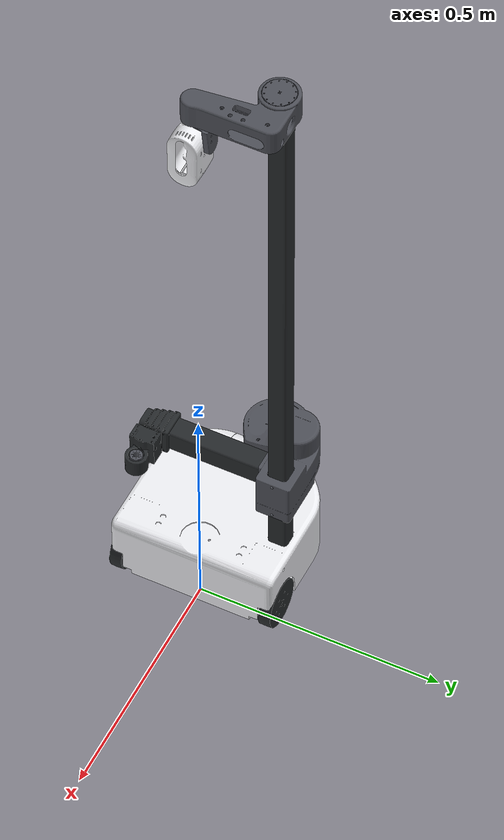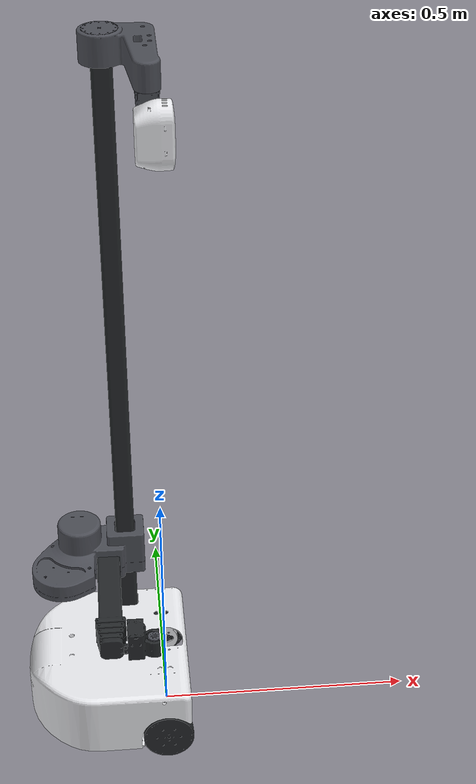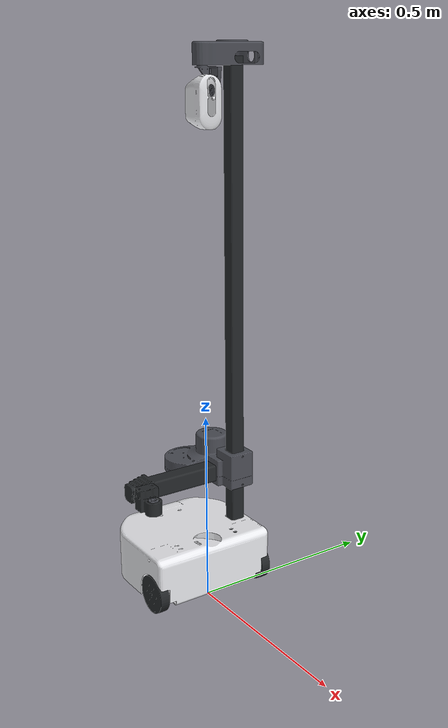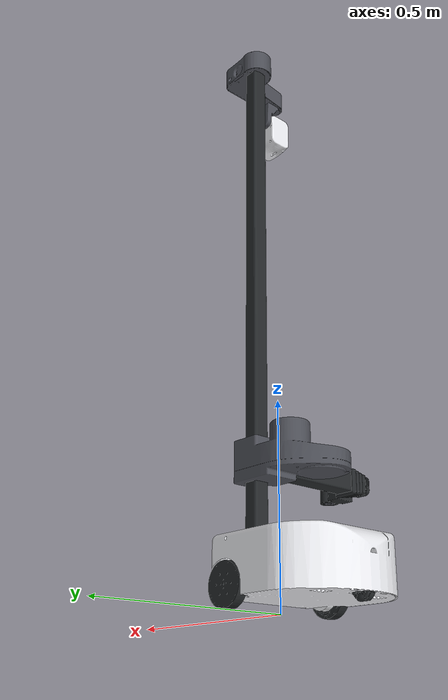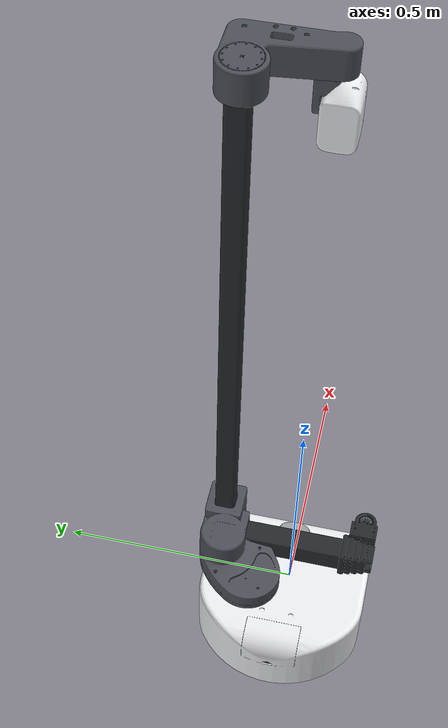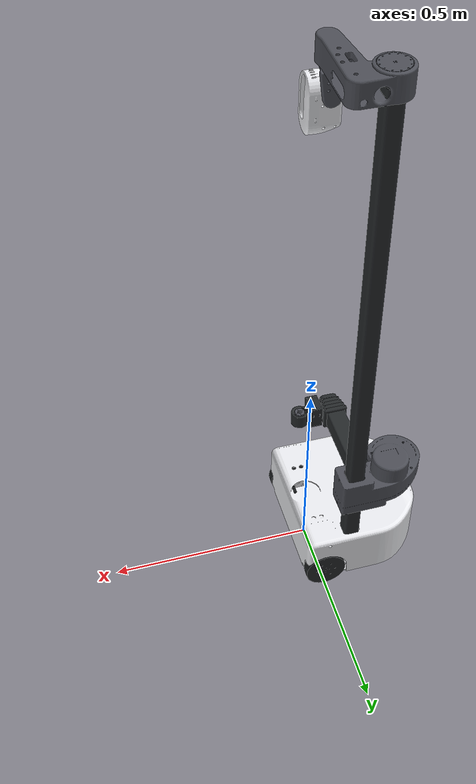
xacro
<?xml version="1.0"?>
<robot xmlns:xacro="http://www.ros.org/wiki/xacro" name="stretch_main">
  <xacro:property name="M_PI" value="3.1415926535897931" />

  <xacro:property name="joint_damping" value="21.75"/>
  <xacro:property name="joint_friction" value="10.48"/>
  <xacro:property name="joint_spring_stiffness" value="0"/>
  <xacro:property name="joint_spring_reference" value="0"/>
  <xacro:property name="caster_damping" value="0.005"/>
  <xacro:property name="caster_friction" value="0.001"/>
  <xacro:property name="caster_velocity_limit" value="5.0"/>
  <xacro:property name="caster_effort_limit" value="100"/>

  <link
    name="base_link">
    <inertial>
      <origin
        xyz="-0.109461304328163 -0.000741018909047708 0.0914915269429946"
        rpy="0 0 0" />
      <mass
        value="1.0723782659782" />
      <inertia
        ixx="0.00310580907710135"
        ixy="1.5182848191076E-06"
        ixz="0.00041690466732394"
        iyy="0.00433798719991832"
        iyz="1.33487716258445E-05"
        izz="0.0037204727467362" />
    </inertial>
    <visual>
      <origin
        xyz="0 0 0"
        rpy="0 0 0" />
      <geometry>
        <mesh
          filename="package://stretch_description/meshes/base_link.dae" />
      </geometry>
    </visual>
    <collision>
      <origin
        xyz="0 0 0"
        rpy="0 0 0" />
      <geometry>
        <mesh
          filename="package://stretch_description/meshes/base_link.STL" />
      </geometry>
    </collision>
  </link>

  <link
    name="link_right_wheel">
    <inertial>
      <origin
        xyz="1.25554620866719E-07 3.54748938447003E-07 0.0239581106165018"
        rpy="0 0 0" />
      <mass
        value="0.00356714564938475" />
      <inertia
        ixx="0.001"
        ixy="0"
        ixz="0"
        iyy="0.001"
        iyz="0"
        izz="0.001" />
    </inertial>
    <visual>
      <origin
        xyz="0 0 0"
        rpy="0 0 0" />
      <geometry>
        <mesh
          filename="package://stretch_description/meshes/link_right_wheel.dae" />
      </geometry>
    </visual>
    <collision>
      <origin
        xyz="0 0 0"
        rpy="0 0 0" />
      <geometry>
        <mesh
          filename="package://stretch_description/meshes/link_right_wheel.STL" />
      </geometry>
    </collision>
  </link>

  <joint
    name="joint_right_wheel"
    type="continuous">
    <origin
      xyz="-0.00300000000000034 -0.15765 0.0508000000000004"
      rpy="-1.57079632679489 -1.11022302462516E-16 7.28583859910277E-17" />
    <parent
      link="base_link" />
    <child
      link="link_right_wheel" />
    <axis
      xyz="0 0 1" />
      <dynamics damping="${joint_damping}" friction="${joint_friction}" spring_reference="${joint_spring_reference}" spring_stiffness="{joint_spring_stiffness}"/>
  </joint>

  <link
    name="link_left_wheel">
    <inertial>
      <origin
        xyz="1.2555462092223E-07 -3.54748938502514E-07 -0.0239581106165035"
        rpy="0 0 0" />
      <mass
        value="0.00356714564938459" />
      <inertia
        ixx="0.001"
        ixy="0"
        ixz="0"
        iyy="0.001"
        iyz="0"
        izz="0.001" />
    </inertial>
    <visual>
      <origin
        xyz="0 0 0"
        rpy="0 0 0" />
      <geometry>
        <mesh
          filename="package://stretch_description/meshes/link_left_wheel.dae" />
      </geometry>
    </visual>
    <collision>
      <origin
        xyz="0 0 0"
        rpy="0 0 0" />
      <geometry>
        <mesh
          filename="package://stretch_description/meshes/link_left_wheel.STL" />
      </geometry>
    </collision>
  </link>

  <joint
    name="joint_left_wheel"
    type="continuous">
    <origin
      xyz="-0.00300000000001899 0.15765 0.0507999999999994"
      rpy="-1.5707963267949 3.16227047920818E-31 7.88745438253713E-16" />
    <parent
      link="base_link" />
    <child
      link="link_left_wheel" />
    <axis
      xyz="0 0 1" />
      <dynamics damping="${joint_damping}" friction="${joint_friction}" spring_reference="${joint_spring_reference}" spring_stiffness="{joint_spring_stiffness}"/>
  </joint>

  <!-- Representing a ball joint -->

  <link name="link_caster">
    <collision>
      <geometry>
        <sphere radius="0.032"/>
      </geometry>
      <origin rpy="0 0 0" xyz="0 0 0"/>
      <surface>
        <friction>
          <ode>
            <mu>0</mu>
            <mu2>0</mu2>
            <slip1>1.0</slip1>
            <slip2>1.0</slip2>
          </ode>
        </friction>
        <contact>
          <ode>
            <soft_cfm>0</soft_cfm>
            <soft_erp>0.2</soft_erp>
            <kp>1e+13</kp>
            <kd>1</kd>
            <min_depth>0.001</min_depth>
          </ode>
        </contact>
      </surface>
    </collision>
    <visual>
      <origin
        xyz="0 0 0"
        rpy="0 0 0" />
      <geometry>
        <mesh
          filename="package://stretch_description/meshes/omni_wheel_m.dae" />
      </geometry>
    </visual>
    <inertial>
      <mass value="0.01" />
      <origin xyz="0 0 0" />
      <inertia
        ixx="0.001"
        ixy="0"
        ixz="0"
        iyy="0.001"
        iyz="0"
        izz="0.001" />
    </inertial>
  </link>

  <joint name="joint_caster" type="fixed">
    <parent link="base_link"/>
    <child link="link_caster"/>
    <origin xyz="-0.245 0.0 0.032" rpy="${-M_PI/2} 0 0"/>
  </joint>

  <link
    name="link_mast">
    <inertial>
      <origin
        xyz="-0.109461304328163 -0.000741018909047708 0.0914915269429946"
        rpy="0 0 0" />
      <mass
        value="0.05" />
      <inertia
        ixx="0.001"
        ixy="0.0"
        ixz="0.0"
        iyy="0.001"
        iyz="0.0"
        izz="0.001" />
    </inertial>
    <visual>
      <origin
        xyz="0 0 0"
        rpy="0 0 0" />
      <geometry>
        <mesh
          filename="package://stretch_description/meshes/link_mast.dae" />
      </geometry>
    </visual>
    <collision>
      <origin
        xyz="0 0 0"
        rpy="0 0 0" />
      <geometry>
        <mesh
          filename="package://stretch_description/meshes/link_mast.STL" />
      </geometry>
    </collision>
  </link>

  <joint
    name="joint_mast"
    type="fixed">
    <origin
      xyz="-0.07 0.134999999999998 0.0284000000000001"
      rpy="1.5707963267949 0 0.00925318926571245" />
    <parent
      link="base_link" />
    <child
      link="link_mast" />
    <axis
      xyz="0 0 0" />
  </joint>

  <link
    name="link_lift">
    <inertial>
      <origin
        xyz="-0.0547636346252869 0.0380939689802074 0.00933159404448308"
        rpy="0 0 0" />
      <mass
        value="0.044820831236007" />
      <inertia
        ixx="0.001"
        ixy="0.0"
        ixz="0.0"
        iyy="0.001"
        iyz="0.0"
        izz="0.001" />
    </inertial>
    <visual>
      <origin
        xyz="0 0 0"
        rpy="0 0 0" />
      <geometry>
        <mesh
          filename="package://stretch_description/meshes/link_lift.dae" />
      </geometry>
    </visual>
    <collision>
      <origin
        xyz="0 0 0"
        rpy="0 0 0" />
      <geometry>
        <mesh
          filename="package://stretch_description/meshes/link_lift.STL" />
      </geometry>
    </collision>
  </link>

  <joint
    name="joint_lift"
    type="prismatic">
    <origin
      xyz="-0.0369217062323472 0.266771199999996 -0.000341653286793524"
      rpy="-1.57079632679552 1.5615431375292 -6.2942004366467E-13" />
    <parent
      link="link_mast" />
    <child
      link="link_lift" />
    <axis
  xyz="0 0 1" />
    <limit effort="100" lower="-0.1033" upper="0.9967" velocity="1.0"/>
    <!-- Make this high friction so gripper does not fall -->
    <dynamics damping="10" friction="10.48" spring_reference="${joint_spring_reference}" spring_stiffness="{joint_spring_stiffness}"/>
  </joint>

  <link
    name="link_arm_l4">
    <inertial>
      <origin
        xyz="-1.61247276464493E-06 1.54715589201215E-06 -0.0953252706040035"
        rpy="0 0 0" />
      <mass
        value="0.00676525455789735" />
      <inertia
        ixx="0.001"
        ixy="0"
        ixz="0"
        iyy="0.001"
        iyz="0"
        izz="0.001" />
    </inertial>
    <visual>
      <origin
        xyz="0 0 0"
        rpy="0 0 0" />
      <geometry>
        <mesh
          filename="package://stretch_description/meshes/link_arm_l4.dae" />
      </geometry>
    </visual>
    <collision>
      <origin
        xyz="0 0 0"
        rpy="0 0 0" />
      <geometry>
        <mesh
          filename="package://stretch_description/meshes/link_arm_l4.STL" />
      </geometry>
    </collision>
  </link>

  <joint
    name="joint_arm_l4"
    type="fixed">
    <origin
      xyz="-0.25471 0 0"
      rpy="1.5708 -3.1019E-16 -1.5708" />
    <parent
      link="link_lift" />
    <child
      link="link_arm_l4" />
    <axis
      xyz="0 0 0" />
  </joint>

  <link
    name="link_arm_l3">
    <inertial>
      <origin
        xyz="-3.34873468621488E-07 4.7411336306924E-07 -0.0974069598289041"
        rpy="0 0 0" />
      <mass
        value="0.00626921047058405" />
      <inertia
        ixx="0.001"
        ixy="0"
        ixz="0"
        iyy="0.001"
        iyz="0"
        izz="0.001" />
    </inertial>
    <visual>
      <origin
        xyz="0 0 0"
        rpy="0 0 0" />
      <geometry>
        <mesh
          filename="package://stretch_description/meshes/link_arm_l3.dae" />
      </geometry>
    </visual>
    <collision>
      <origin
        xyz="0 0 0"
        rpy="0 0 0" />
      <geometry>
        <mesh
          filename="package://stretch_description/meshes/link_arm_l3.STL" />
      </geometry>
    </collision>
  </link>

  <joint
    name="joint_arm_l3"
    type="prismatic">
    <origin
      xyz="0 0 0.013"
      rpy="3.5742E-16 3.2123E-16 -2.4565E-16" />
    <parent
      link="link_arm_l4" />
    <child
      link="link_arm_l3" />
    <axis
  xyz="0 0 1" />
    <limit effort="100" lower="0.0" upper="0.13" velocity="1.0"/>
    <dynamics damping="${joint_damping}" friction="${joint_friction}" spring_reference="${joint_spring_reference}" spring_stiffness="{joint_spring_stiffness}"/>
  </joint>

  <link
    name="link_arm_l2">
    <inertial>
      <origin
        xyz="-3.31043560508615E-07 3.13422303999111E-07 -0.097255883541891"
        rpy="0 0 0" />
      <mass
        value="0.00569074368576238" />
      <inertia
        ixx="0.001"
        ixy="0"
        ixz="0"
        iyy="0.001"
        iyz="0"
        izz="0.001" />
    </inertial>
    <visual>
      <origin
        xyz="0 0 0"
        rpy="0 0 0" />
      <geometry>
        <mesh
          filename="package://stretch_description/meshes/link_arm_l2.dae" />
      </geometry>
    </visual>
    <collision>
      <origin
        xyz="0 0 0"
        rpy="0 0 0" />
      <geometry>
        <mesh
          filename="package://stretch_description/meshes/link_arm_l2.STL" />
      </geometry>
    </collision>
  </link>

  <joint
    name="joint_arm_l2"
    type="prismatic">
    <origin
      xyz="0 0 0.013"
      rpy="2.91385731014123E-16 4.44300759504684E-17 3.25691080516352E-16" />
    <parent
      link="link_arm_l3" />
    <child
      link="link_arm_l2" />
    <axis
  xyz="0 0 1" />
    <limit effort="100" lower="0.0" upper="0.13" velocity="1.0"/>
    <dynamics damping="${joint_damping}" friction="${joint_friction}" spring_reference="${joint_spring_reference}" spring_stiffness="{joint_spring_stiffness}"/>
  </joint>

  <link
    name="link_arm_l1">
    <inertial>
      <origin
        xyz="-3.36876635420591E-07 3.05876091066803E-07 -0.0969117032232756"
        rpy="0 0 0" />
      <mass
        value="0.00511763619538321" />
      <inertia
        ixx="0.001"
        ixy="0"
        ixz="0"
        iyy="0.001"
        iyz="0"
        izz="0.001" />
    </inertial>
    <visual>
      <origin
        xyz="0 0 0"
        rpy="0 0 0" />
      <geometry>
        <mesh
          filename="package://stretch_description/meshes/link_arm_l1.dae" />
      </geometry>
    </visual>
    <collision>
      <origin
        xyz="0 0 0"
        rpy="0 0 0" />
      <geometry>
        <mesh
          filename="package://stretch_description/meshes/link_arm_l1.STL" />
      </geometry>
    </collision>
  </link>

  <joint
    name="joint_arm_l1"
    type="prismatic">
    <origin
      xyz="0 0 0.013"
      rpy="7.41596560408007E-17 1.33876788296791E-16 -2.44545873596083E-16" />
    <parent
      link="link_arm_l2" />
    <child
      link="link_arm_l1" />
    <axis
  xyz="0 0 1" />
    <limit effort="100" lower="0.0" upper="0.13" velocity="1.0"/>
    <dynamics damping="${joint_damping}" friction="${joint_friction}" spring_reference="${joint_spring_reference}" spring_stiffness="{joint_spring_stiffness}"/>
  </joint>

  <link
    name="link_arm_l0">
    <inertial>
      <origin
        xyz="0.0230715049668191 -0.00195115833662818 -0.0360646347160285"
        rpy="0 0 0" />
      <mass
        value="0.0101241250325294" />
      <inertia
        ixx="0.001"
        ixy="0"
        ixz="0"
        iyy="0.001"
        iyz="0"
        izz="0.001" />
    </inertial>
    <visual>
      <origin
        xyz="0 0 0"
        rpy="0 0 0" />
      <geometry>
        <mesh
          filename="package://stretch_description/meshes/link_arm_l0.dae" />
      </geometry>
    </visual>
    <collision>
      <origin
        xyz="0 0 0"
        rpy="0 0 0" />
      <geometry>
        <mesh
          filename="package://stretch_description/meshes/link_arm_l0.STL" />
      </geometry>
    </collision>
  </link>

  <joint
    name="joint_arm_l0"
    type="prismatic">
    <origin
      xyz="0 0 -0.0137499999999938"
      rpy="-3.05317390622457E-16 -4.23236224076729E-16 -2.68425135229209E-17" />
    <parent
      link="link_arm_l1" />
    <child
      link="link_arm_l0" />
    <axis
  xyz="0 0 1" />
    <limit effort="100" lower="0.0" upper="0.13" velocity="1.0"/>
    <dynamics damping="${joint_damping}" friction="${joint_friction}" spring_reference="${joint_spring_reference}" spring_stiffness="{joint_spring_stiffness}"/>
  </joint>

  <link
    name="link_wrist_yaw">
    <inertial>
      <origin
        xyz="-8.02795716750571E-06 1.93811447768422E-05 0.018946700595851"
        rpy="0 0 0" />
      <mass
        value="0.0405398981326229" />
      <inertia
        ixx="0.001"
        ixy="0"
        ixz="0"
        iyy="0.001"
        iyz="0"
        izz="0.001" />
    </inertial>
    <visual>
      <origin
        xyz="0 0 0"
        rpy="0 0 0" />
      <geometry>
        <mesh
          filename="package://stretch_description/meshes/link_wrist_yaw.dae" />
      </geometry>
    </visual>
    <collision>
      <origin
        xyz="0 0 0"
        rpy="0 0 0" />
      <geometry>
        <mesh
          filename="package://stretch_description/meshes/link_wrist_yaw.STL" />
      </geometry>
    </collision>
  </link>

  <joint
    name="joint_wrist_yaw"
    type="revolute">
    <origin
      xyz="0.083 -0.03075 0"
      rpy="1.5708 4.2595E-14 2.6415E-15" />
    <parent
      link="link_arm_l0" />
    <child
      link="link_wrist_yaw" />
    <axis
      xyz="0 0 -1" />
    <limit effort="100" lower="-1.75" upper="4.0" velocity="1.0"/>
    <dynamics damping="${joint_damping}" friction="${joint_friction}" spring_reference="${joint_spring_reference}" spring_stiffness="{joint_spring_stiffness}"/>
  </joint>

  <link
    name="link_head">
    <inertial>
      <origin
        xyz="0.0372933550588956 0.045509432985552 0.0281136801213409"
        rpy="0 0 0" />
      <mass
        value="0.00129454717596498" />
      <inertia
        ixx="0.001"
        ixy="0"
        ixz="0"
        iyy="0.001"
        iyz="0"
        izz="0.001" />
    </inertial>
    <visual>
      <origin
        xyz="0 0 0"
        rpy="0 0 0" />
      <geometry>
        <mesh
          filename="package://stretch_description/meshes/link_head.dae" />
      </geometry>
    </visual>
    <collision>
      <origin
        xyz="0 0 0"
        rpy="0 0 0" />
      <geometry>
        <mesh
          filename="package://stretch_description/meshes/link_head.STL" />
      </geometry>
    </collision>
  </link>

  <joint
    name="joint_head"
    type="fixed">
    <origin
      xyz="0 1.33 0"
      rpy="1.5708 -1.5615 3.1416" />
    <parent
      link="link_mast" />
    <child
      link="link_head" />
    <axis
      xyz="0 0 0" />
  </joint>

  <link
    name="link_head_pan">
    <inertial>
      <origin
        xyz="-0.00116200255310878 0.0130365621706306 0.00137629842298681"
        rpy="0 0 0" />
      <mass
        value="0.00035858341182617" />
      <inertia
        ixx="0.0001"
        ixy="0"
        ixz="0"
        iyy="0.0001"
        iyz="0"
        izz="0.0001" />
    </inertial>
    <visual>
      <origin
        xyz="0 0 0"
        rpy="0 0 0" />
      <geometry>
        <mesh
          filename="package://stretch_description/meshes/link_head_pan.dae" />
      </geometry>
    </visual>
    <collision>
      <origin
        xyz="0 0 0"
        rpy="0 0 0" />
      <geometry>
        <mesh
          filename="package://stretch_description/meshes/link_head_pan.STL" />
      </geometry>
    </collision>
  </link>

  <joint
    name="joint_head_pan"
    type="revolute">
    <origin
      xyz="0.135 0.0731 -0.003"
      rpy="-6.4986E-15 -6.068E-24 1.5708" />
    <parent
      link="link_head" />
    <child
      link="link_head_pan" />
    <axis
  xyz="0 0 1" />
    <dynamics damping="${joint_damping}" friction="${joint_friction}" spring_reference="${joint_spring_reference}" spring_stiffness="{joint_spring_stiffness}"/>
    <limit effort="100" lower="-3.9" upper="1.5" velocity="1.0"/>
  </joint>

  <link
    name="link_head_tilt">
    <inertial>
      <origin
        xyz="0.00920211049011871 -0.0279724762416447 0.0306580436227023"
        rpy="0 0 0" />
      <mass
        value="0.000101242408063442" />
      <inertia
        ixx="0.0001"
        ixy="0"
        ixz="0"
        iyy="0.0001"
        iyz="0"
        izz="0.0001" />
    </inertial>
    <visual>
      <origin
        xyz="0 0 0"
        rpy="0 0 0" />
      <geometry>
        <mesh
          filename="package://stretch_description/meshes/link_head_tilt.dae" />
      </geometry>
    </visual>
    <collision>
      <origin
        xyz="0 0 0"
        rpy="0 0 0" />
      <geometry>
        <mesh
          filename="package://stretch_description/meshes/link_head_tilt.STL" />
      </geometry>
    </collision>
  </link>

  <joint
    name="joint_head_tilt"
    type="revolute">
    <origin
      xyz="-0.0013 0.027507 -0.053311"
      rpy="1.5708 6.068E-24 -2.5165E-15" />
    <parent
      link="link_head_pan" />
    <child
      link="link_head_tilt" />
    <axis
      xyz="0 0 1" />
    <dynamics damping="${joint_damping}" friction="${joint_friction}" spring_reference="${joint_spring_reference}" spring_stiffness="{joint_spring_stiffness}"/>
    <limit effort="100" lower="-1.53" upper="0.79" velocity="1.0"/>
  </joint>

</robot>
